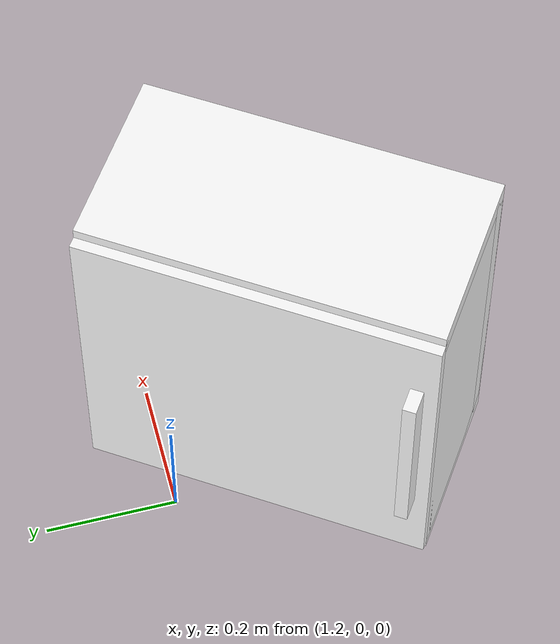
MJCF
<mujoco model="cabinet">
    <compiler angle="radian" eulerseq='zxy' />
    <option gravity = "0 0 0" />
    <option>
        <flag contact = "disable"/>
    </option>
    <statistic	extent="1.0" center="0.0 0.0 0.0"/>
    <visual>
        <map fogstart="3" fogend="5" force="0.1" znear=" 0.100000 " zfar=" 12.000000 "/>
    </visual>
    <size njmax="500" nconmax="100" />
    <actuator>
        <velocity joint="bottom_left_hinge" name="viva_revolution" kv='10'></velocity>
    </actuator>
    <asset>
        <texture builtin="flat" name="tabletex" height="32" width="32" rgb1="1 1 1" type="cube"></texture>
        <texture builtin="flat" name="objtex" height="32" width="32" rgb1="1 1 1" type="cube"></texture>
        <texture builtin="flat" name="handletex" height="32" width="32" rgb1="1 1 1" type="cube"></texture>
        <texture builtin="flat" name="wallpaper" height="32" width="32" rgb1="1 1 1" type="cube"></texture>
        <material name="geomTable" shininess="0.03" specular="0.75" texture="tabletex"></material>
        <material name="geomObj" shininess="0.03" specular="0.75" texture="objtex"></material>
        <material name="geomHandle" shininess="0.03" specular="0.75" texture="handletex"></material>
        <material name="bg" shininess="0.03" specular="0.75" texture="wallpaper"></material>
    </asset>
    <worldbody>
            <body name="cabinet_bottom" pos= " 1.418448 -0.234571 -0.201230 "  quat= " 0.290235 0.000000 0.000000 0.956955" >
                <inertial pos="0 0 0" mass="1" diaginertia="1 1 1" />
                <geom size= " 0.142496 0.282422 0.017293 "  type="box" material="geomObj" name="b"/>
                <body name="cabinet_left" pos= " 0.000000 -0.265129 0.288556 " >
                    <inertial pos="0 0 0" mass="1" diaginertia="1 1 1" />
                    <geom size= " 0.142496 0.017293 0.288556 "  type="box" material="geomObj" name="c" />
                </body>
                <body name="cabinet_right" pos= " 0.000000 0.265129 0.288556 " >
                    <inertial pos="0 0 0" mass="1" diaginertia="1 1 1" />
                    <geom size= " 0.142496 0.017293 0.288556 "  type="box" material="geomObj" name="d" />
                </body>
                <body name="cabinet_top" pos= " 0.000000 0.000000 0.577112 " >
                    <inertial pos="0 0 0" mass="1" diaginertia="1 1 1" />
                    <geom size= " 0.142496 0.282422 0.017293 "  type="box" material="geomObj" name="e"/>
                </body>
                <body name="cabinet_back" pos= " -0.125203 0.000000 0.288556 "  >
                    <inertial pos="0 0 0" mass="1" diaginertia="1 1 1" />
                    <geom size= " 0.017293 0.282422 0.288556 "  type="box" material="geomObj" name="f" />
                </body>
                <body name="cabinet_left_hinge" pos= " 0.142496 -0.282422 0.288556 " >
                    <inertial pos= " 0.000000 0.282422 0.000000 "  mass="1" diaginertia="1 1 1" />
                    <joint name="bottom_left_hinge" type="hinge" pos="0 0 0" axis="0 0 1" limited="true" range= "-2.3 0"  />
                    <geom size= " 0.017293 0.282422 0.288556 "  pos= " 0.000000 0.282422 0.000000 "  type="box" material="geomObj" name="g"/>
                    <body name="handle_link" pos= " 0.035624 0.532854 0.021865 " >
                        <inertial pos="0 0 0" mass="1" diaginertia="1 1 1" />
                        <geom size= " 0.019533 0.010569 0.157934 "  type="box" material="geomHandle" name="h"/>
                    </body>
                </body>
            </body>
        <body name="external_camera_body_0" pos="0.0 0 0.00">
            <camera euler="-1.57 1.57 0.0" fovy=" 54.280851 " name="external_camera_0" pos="0.0 0 0"></camera>
            <inertial pos= " 0.00 0.0 0.000000 " mass="1" diaginertia="1 1 1" />
            <joint name="cam_j" pos="0.0 0 0" axis = "1 0 0" type="free" />
        </body>
    </worldbody>
</mujoco>
